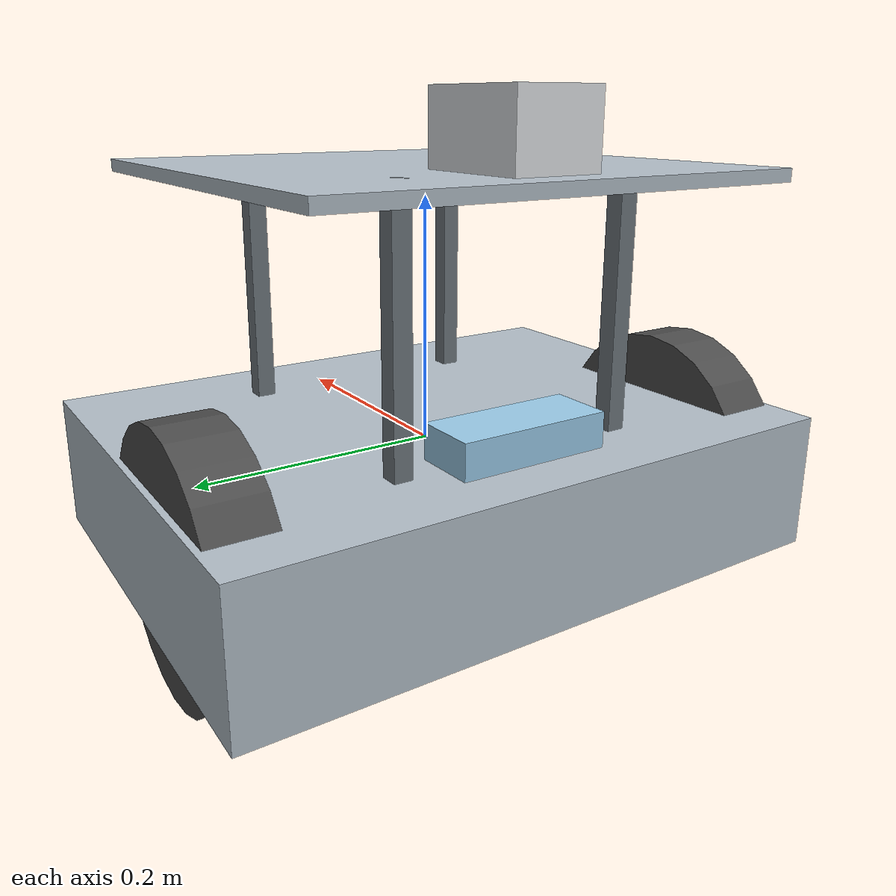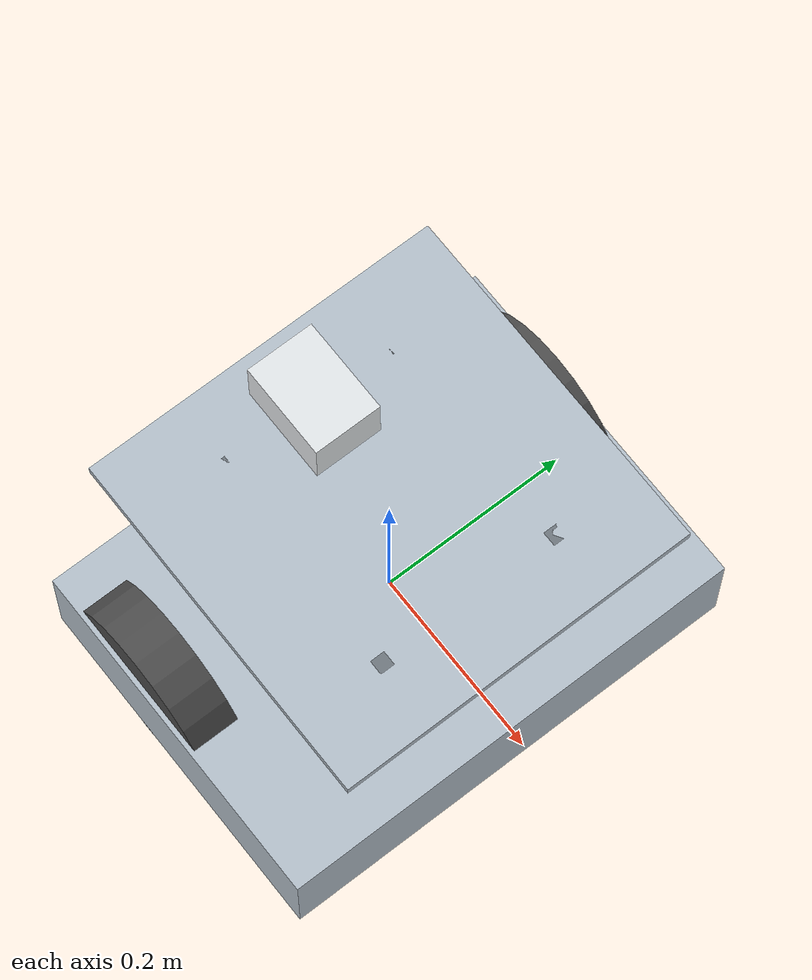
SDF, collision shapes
<?xml version="1.0" ?>
<sdf version="1.5">

  <model name="mobile_robot">

    <link name="root"/>

    <link name="base">

      <pose>-0.000225828 -0.000582711 -0.0756785 0 0 0</pose>

      <inertial>
        <pose>-0.000219092 -0.000000173224 0.0499034 0 0 0</pose>
        <mass>15.1111</mass>
        <inertia>
          <ixx>0.171627</ixx>
          <ixy>-1.29454e-07</ixy>
          <ixz>4.93826e-05</ixz>
          <iyy>0.164228</iyy>
          <iyz>5.77083e-09</iyz>
          <izz>0.312047</izz>
        </inertia>
      </inertial>

      <visual name="base_visual">
        <geometry>
          <mesh>
            <uri>model://mobile_robot/meshes/base.stl</uri>
            <scale>1 1 1</scale>
          </mesh>
        </geometry>
        <material>
          <diffuse>0.713726 0.760784 0.8 1</diffuse>
          <ambient>0.713726 0.760784 0.8 1</ambient>
        </material>
      </visual>

      <collision name="base_collision">
        <pose>0 0 0.045 0 0 0</pose>
        <geometry>
          <box>
            <size>0.374166 0.500716 0.110000</size>
          </box>
        </geometry>
      </collision>

    </link>

    <link name="bar">

      <pose>0.114681172 0.095835389 -0.0256785 0 0 0</pose>

      <inertial>
        <pose>0 0 0.125 0 0 0</pose>
        <mass>0.0525726</mass>realtive_to="rplidar"
        <inertia>
          <ixx>0.000274555</ixx>
          <ixy>0</ixy>
          <ixz>0</ixz>
          <iyy>0.000274555</iyy>
          <iyz>0</iyz>
          <izz>1.4786e-06</izz>
        </inertia>
      </inertial>

      <visual name="bar_visual">
        <pose>0 0 0 0 0 0</pose>
        <geometry>
          <mesh>
            <uri>model://mobile_robot/meshes/bar.stl</uri>
          </mesh>
        </geometry>
        <material>
          <diffuse>0.439216 0.47451 0.501961 1</diffuse>
          <ambient>0.439216 0.47451 0.501961 1</ambient>
        </material>
      </visual>

      <collision name="bar_collision">
        <pose>0 0 0.125 0 0 0</pose>
        <geometry>
          <box>
            <size>0.015 0.014978 0.25</size>
          </box>
        </geometry>
      </collision>

    </link>

    <link name="bar_1">

      <pose>0.114681172 -0.097000811 -0.0256785 0 0 0</pose>

      <inertial>
        <pose>0 0 0.125 0 0 0</pose>
        <mass>0.0525726</mass>
        <inertia>
          <ixx>0.000274555</ixx>
          <ixy>0</ixy>
          <ixz>0</ixz>
          <iyy>0.000274555</iyy>
          <iyz>0</iyz>
          <izz>1.4786e-06</izz>
        </inertia>
      </inertial>

      <visual name="bar_1_visual">
        <pose>0 0 0 0 0 0</pose>
        <geometry>
          <mesh>
            <uri>model://mobile_robot/meshes/bar.stl</uri>
          </mesh>
        </geometry>
        <material>
          <diffuse>0.439216 0.47451 0.501961 1</diffuse>
          <ambient>0.439216 0.47451 0.501961 1</ambient>
        </material>
      </visual>

      <collision name="bar_1_collision">
        <pose>0 0 0.125 0 0 0</pose>
        <geometry>
          <box>
            <size>0.015 0.014978 0.25</size>
          </box>
        </geometry>
      </collision>

    </link>

    <link name="bar_2">

      <pose>-0.115132828 0.095835389 -0.0256785 0 0 0</pose>

      <inertial>
        <pose>0 0 0.125 0 0 0</pose>
        <mass>0.0525726</mass>
        <inertia>
          <ixx>0.000274555</ixx>
          <ixy>0</ixy>
          <ixz>0</ixz>
          <iyy>0.000274555</iyy>
          <iyz>0</iyz>
          <izz>1.4786e-06</izz>
        </inertia>
      </inertial>

      <visual name="bar_2_visual">
        <pose>0 0 0 0 0 0</pose>
        <geometry>
          <mesh>
            <uri>model://mobile_robot/meshes/bar.stl</uri>
          </mesh>
        </geometry>
        <material>
          <diffuse>0.439216 0.47451 0.501961 1</diffuse>
          <ambient>0.439216 0.47451 0.501961 1</ambient>
        </material>
      </visual>

      <collision name="bar_2_collision">
        <pose>0 0 0.125 0 0 0</pose>
        <geometry>
          <box>
            <size>0.015 0.014978 0.25</size>
          </box>
        </geometry>
      </collision>

    </link>

    <link name="bar_3">

      <pose>-0.115132828 -0.097000811 -0.0256785 0 0 0</pose>

      <inertial>
        <pose>0 0 0.125 0 0 0</pose>
        <mass>0.0525726</mass>
        <inertia>
          <ixx>0.000274555</ixx>
          <ixy>0</ixy>
          <ixz>0</ixz>
          <iyy>0.000274555</iyy>
          <iyz>0</iyz>
          <izz>1.4786e-06</izz>
        </inertia>
      </inertial>

      <visual name="bar_3_visual">
        <pose>0 0 0 0 0 0</pose>
        <geometry>
          <mesh>
            <uri>model://mobile_robot/meshes/bar.stl</uri>
          </mesh>
        </geometry>
        <material>
          <diffuse>0.439216 0.47451 0.501961 1</diffuse>
          <ambient>0.439216 0.47451 0.501961 1</ambient>
        </material>
      </visual>

      <collision name="bar_3_collision">
        <pose>0 0 0.125 0 0 0</pose>
        <geometry>
          <box>
            <size>0.015 0.014978 0.25</size>
          </box>
        </geometry>
      </collision>

    </link>

    <link name="plate">

      <pose relative_to="bar_3">0 0 0.25 0 0 00</pose>

      <inertial>
        <pose>0.114907 0.0964181 -0.005 0 0 0</pose>
        <mass>1.56025</mass>
        <inertia>
          <ixx>0.0168214</ixx>
          <ixy>0</ixy>
          <ixz>0</ixz>
          <iyy>0.0163518</iyy>
          <iyz>0</iyz>
          <izz>0.0331472</izz>
        </inertia>
      </inertial>

      <visual name="plate_visual">
        <pose>0.114907 0.0964181 -0.01 0 0 0</pose>
        <geometry>
          <mesh>
            <uri>model://mobile_robot/meshes/plate.stl</uri>
          </mesh>
        </geometry>
        <material>
          <diffuse>0.713726 0.760784 0.8 1</diffuse>
          <ambient>0.713726 0.760784 0.8 1</ambient>
        </material>
      </visual>

      <collision name="plate_collision">
        <pose>0.114907 0.0964181 -0.005 0 0 0</pose>
        <geometry>
          <box>
            <size>0.374166 0.380716 0.010</size>
          </box>
        </geometry>
      </collision>

    </link>

    <link name="depth_camera">

      <pose relative_to="base">-0.12 0 0.1 0 0 -1.5708</pose>

      <inertial>
        <pose>-0.000224313 -0.00887366 0.0180682 0 0 0</pose>
        <mass>0.10278</mass>
        <inertia>
          <ixx>1.99451e-05</ixx>
          <ixy>-4.72461e-08</ixy>
          <ixz>9.49322e-08</ixz>
          <iyy>0.000125466</iyy>
          <iyz>2.64592e-06</iyz>
          <izz>0.000126152</izz>
        </inertia>
      </inertial>

      <visual name="depth_camera_visual">
        <pose>0.0000519288 -0.000172347 0.00608878 0 0 0</pose>
        <geometry>
          <mesh>
            <uri>model://mobile_robot/meshes/depth_camera.stl</uri>
          </mesh>
        </geometry>
        <material>
          <diffuse>0.615686 0.811765 0.929412 1</diffuse>
          <ambient>0.615686 0.811765 0.929412 1</ambient>
        </material>
      </visual>

      <collision name="depth_camera_collision">
        <pose>-0.000338 -0.000040 0.011011 0 0 0</pose>
        <geometry>
          <box>
            <size>0.124 0.050425 0.0342</size>
          </box>
        </geometry>
      </collision>

      <sensor name="depth_camera" type="rgbd_camera">

        <pose>-0.120226 0 0.0243214 0 0 -1.5708</pose>

        <always_on>true</always_on>
        <update_rate>30</update_rate>
        <topic>/camera</topic>

        <camera name="intel_realsense_d455">

          <horizontal_fov>1.50098</horizontal_fov>

          <lens>
            <intrinsics>
              <fx>343.159</fx>
              <fy>343.159</fy>
              <cx>319.5</cx>
              <cy>179.5</cy>
              <s>0</s>
            </intrinsics>
          </lens>

          <distortion>
            <k1>0</k1>
            <k2>0</k2>
            <k3>0</k3>
            <p1>0</p1>
            <p2>0</p2>
            <center>0.5 0.5</center>
          </distortion>

          <image>
            <width>640</width>
            <height>360</height>
            <format>R8G8B8</format>
          </image>

          <clip>
            <near>0.01</near>
            <far>300</far>
          </clip>

          <depth_camera>
            <clip>
              <near>0.1</near>
              <far>10</far>
            </clip>
            <output>depths</output>
          </depth_camera>

          <noise>
            <type>gaussian</type>
            <mean>0</mean>
            <stddev>0.007</stddev>
          </noise>

        </camera>
      </sensor>

    </link>

    <link name="rplidar">

      <pose relative_to="plate">-0.00509333 0.0964181 0.015 0 0 0</pose>

      <inertial>
        <pose>0.0100884 0.0000353251 0.0151831 0 0 0</pose>
        <mass>0.0997506</mass>
        <inertia>
          <ixx>4.28612e-05</ixx>
          <ixy>2.8632e-07</ixy>
          <ixz>1.36569e-05</ixz>
          <iyy>8.02911e-05</iyy>
          <iyz>-1.31345e-06</iyz>
          <izz>8.83408e-05</izz>
        </inertia>
      </inertial>

      <visual name="rplidar_visual">
        <pose>0.000083964 -0.000444572 0 0 0 0</pose>
        <geometry>
          <mesh>
            <uri>model://mobile_robot/meshes/rplidar.stl</uri>
          </mesh>
        </geometry>
        <material>
          <diffuse>0.898039 0.913725 0.925490 1</diffuse>
          <ambient>0.898039 0.913725 0.925490 1</ambient>
        </material>
      </visual>

      <collision name="rplidar_collision">
        <pose>0.013251 -0.000034 0.013300 0 0 0</pose>
        <geometry>
          <box>
            <size>0.099 0.070926 0.0566</size>
          </box>
        </geometry>
      </collision>

      <sensor name="rplidar" type="gpu_lidar">

        <pose>0 0 0 0 0 3.14159265359</pose>

        <visualize>true</visualize>
        <update_rate>10</update_rate>
        <always_on>true</always_on>

        <topic>/scan</topic>

        <ray>

          <scan>
            <horizontal>
              <samples>360</samples>
              <resolution>1.0</resolution>
              <min_angle>0</min_angle>
              <max_angle>6.284</max_angle>
            </horizontal>
          </scan>

          <range>
            <min>0.10</min>
            <max>3.5</max>
            <resolution>0.015</resolution>
          </range>

          <noise>
            <type>gaussian</type>
            <mean>0</mean>
            <stddev>0.01</stddev>
          </noise>

        </ray>

      </sensor>

    </link>

    <link name="wheel_left">

      <pose relative_to="base">-0.06 -0.220358 0.05 1.5708 0 -1.5708</pose>

      <inertial>
        <pose>0.0037479 0 0 0 0 0</pose>
        <mass>0.922424</mass>
        <inertia>
          <ixx>0.00462916</ixx>
          <ixy>0</ixy>
          <ixz>0</ixz>
          <iyy>0.00240533</iyy>
          <iyz>0</iyz>
          <izz>0.00240533</izz>
        </inertia>
      </inertial>

      <visual name="wheel_left_visual">
        <geometry>
          <mesh>
            <uri>model://mobile_robot/meshes/wheel.stl</uri>
          </mesh>
        </geometry>
        <material>
          <diffuse>0.301961 0.301961 0.301961 1</diffuse>
          <ambient>0.301961 0.301961 0.301961 1</ambient>
        </material>
      </visual>

      <collision name="wheel_left_collision">
        <pose>0 0 0 0 1.57079632679 0</pose>
        <geometry>
          <cylinder>
            <radius>0.099117</radius>
            <length>0.05</length>
          </cylinder>
        </geometry>
        <surface>
          <friction>
            <ode>
              <mu>2.0</mu>
              <mu2>2.0</mu2>
            </ode>
          </friction>
          <contact>
            <ode>
              <kp>1000000.0</kp>
              <kd>100.0</kd>
              <min_depth>0.001</min_depth>
              <max_vel>0.1</max_vel>
            </ode>
          </contact>
        </surface>
      </collision>

    </link>

    <link name="wheel_right">

      <pose relative_to="base">-0.06 0.220358 0.05 -1.5708 0 1.5708</pose>

      <inertial>
        <pose>0.0037479 0 0 0 0 0</pose>
        <mass>0.922424</mass>
        <inertia>
          <ixx>0.00462916</ixx>
          <ixy>0</ixy>
          <ixz>0</ixz>
          <iyy>0.00240533</iyy>
          <iyz>0</iyz>
          <izz>0.00240533</izz>
        </inertia>
      </inertial>

      <visual name="wheel_right_visual">
        <geometry>
          <mesh>
            <uri>model://mobile_robot/meshes/wheel.stl</uri>
          </mesh>
        </geometry>
        <material>
          <diffuse>0.301961 0.301961 0.301961 1</diffuse>
          <ambient>0.301961 0.301961 0.301961 1</ambient>
        </material>
      </visual>

      <collision name="wheel_right_collision">
        <pose>0 0 0 0 1.57079632679 0</pose>
        <geometry>
          <cylinder>
            <radius>0.099117</radius>
            <length>0.05</length>
          </cylinder>
        </geometry>
        <surface>
          <friction>
            <ode>
              <mu>2.0</mu>
              <mu2>2.0</mu2>
            </ode>
          </friction>
          <contact>
            <ode>
              <kp>1000000.0</kp>
              <kd>100.0</kd>
              <min_depth>0.001</min_depth>
              <max_vel>0.1</max_vel>
            </ode>
          </contact>
        </surface>
      </collision>

    </link>

    <link name="caster_socket">

      <pose relative_to="base">0.12 0 -0.01 0 0 0</pose>

      <inertial>
        <pose>0 0 -0.0137698 0 0 0</pose>
        <mass>0.0119725</mass>
        <inertia>
          <ixx>2.20545e-06</ixx>
          <ixy>0</ixy>
          <ixz>0</ixz>
          <iyy>1.71246e-06</iyy>
          <iyz>1.15412e-11</iyz>
          <izz>1.92329e-06</izz>
        </inertia>
      </inertial>

      <visual name="caster_socket_visual">
        <pose>0 0 -0.022 0 0 0</pose>
        <geometry>
          <mesh>
            <uri>model://mobile_robot/meshes/caster_socket.stl</uri>
          </mesh>
        </geometry>
        <material>
          <diffuse>0.713726 0.760784 0.8 1</diffuse>
          <ambient>0.713726 0.760784 0.8 1</ambient>
        </material>
      </visual>

      <collision name="caster_socket_collision">
        <pose>0 0 0.007 0 0 0</pose>
        <geometry>
          <box>
            <size>0.026473 0.026474 0.03</size>
          </box>
        </geometry>
      </collision>

    </link>

    <link name="caster_wheel">

      <pose relative_to="caster_socket">0 0.0000005 -0.022 0 0 0</pose>

      <inertial>
        <pose>0 0 0 0 0 0</pose>
        <mass>0.0130779</mass>
        <inertia>
          <ixx>1.09879e-06</ixx>
          <ixy>0</ixy>
          <ixz>0</ixz>
          <iyy>1.81484e-06</iyy>
          <iyz>0</iyz>
          <izz>1.09879e-06</izz>
        </inertia>
      </inertial>

      <visual name="caster_wheel_visual">
        <pose>0 0 0 0 0 0</pose>
        <geometry>
          <mesh>
            <uri>model://mobile_robot/meshes/caster_wheel.stl</uri>
          </mesh>
        </geometry>
        <material>
          <diffuse>0.301961 0.301961 0.301961 1</diffuse>
          <ambient>0.301961 0.301961 0.301961 1</ambient>
        </material>
      </visual>

      <collision name="caster_wheel_collision">
        <pose>0 0 0 -1.57079632679 0 0</pose>
        <geometry>
          <cylinder>
            <radius>0.017991</radius>
            <length>0.032</length>
          </cylinder>
        </geometry>
        <surface>
          <friction>
            <ode>
              <mu>0.3</mu>
              <mu2>0.3</mu2>
            </ode>
          </friction>
        </surface>
      </collision>

    </link>

    <joint name="hanging_node_to_root_joint" type="fixed">
      <parent>root</parent>
      <child>base</child>
      <pose>-0.000225828 -0.000582711 -0.0756785 0 0 0</pose>
    </joint>

    <joint name="depth_camera_to_base" type="fixed">
      <parent>base</parent>
      <child>depth_camera</child>
      <pose>-0.12 0 0.1 0 0 -1.5708</pose>
    </joint>

    <joint name="bar_to_base1" type="fixed">
      <parent>base</parent>
      <child>bar_1</child>
      <pose>0.114907 -0.0964181 0.05 0 0 0</pose>
    </joint>

    <joint name="bar_to_base2" type="fixed">
      <parent>base</parent>
      <child>bar_3</child>
      <pose>-0.114907 -0.0964181 0.05 0 0 0</pose>
    </joint>

    <joint name="bar_to_base3" type="fixed">
      <parent>base</parent>
      <child>bar</child>
      <pose>0.114907 0.0964181 0.05 0 0 0</pose>
    </joint>

    <joint name="bar_to_base4" type="fixed">
      <parent>base</parent>
      <child>bar_2</child>
      <pose>-0.114907 0.0964181 0.05 0 0 0</pose>
    </joint>

    <joint name="plate_to_bar" type="fixed">
      <parent>bar_3</parent>
      <child>plate</child>
      <pose>0 0 0.25 0 0 0</pose>
    </joint>

    <joint name="rplidar_to_plate" type="fixed">
      <parent>plate</parent>
      <child>rplidar</child>
      <pose>-0.00509333 0.0964181 0.015 0 0 0</pose>
    </joint>

    <joint name="wheel_left_to_base" type="revolute">

      <parent>base</parent>
      <child>wheel_left</child>

      <pose relative_to="base">-0.06 -0.220358 0.05 1.5708 0 -1.5708</pose>

      <axis>
        <xyz>1 0 0</xyz>
        <dynamics>
          <damping>0.5</damping>
          <friction>0.05</friction>
        </dynamics>
      </axis>

    </joint>

    <joint name="wheel_right_to_base" type="revolute">

      <parent>base</parent>
      <child>wheel_right</child>

      <pose relative_to="base">-0.06 0.220358 0.05 -1.5708 0 1.5708</pose>

      <axis>
        <xyz>-1 0 0</xyz>
        <dynamics>
          <damping>0.5</damping>
          <friction>0.05</friction>
        </dynamics>
      </axis>

    </joint>

    <joint name="caster_socket_to_base" type="revolute">

      <parent>base</parent>
      <child>caster_socket</child>

      <pose relative_to="base">0.12 0 -0.01 0 0 0</pose>

      <axis>
        <xyz>0 0 1</xyz>
        <dynamics>
          <damping>0.5</damping>
          <friction>0.05</friction>
        </dynamics>
      </axis>

    </joint>

    <joint name="caster_wheel_to_socket" type="revolute">

      <parent>caster_socket</parent>
      <child>caster_wheel</child>

      <pose relative_to="base">0 0.0000005 -0.022 0 0 0</pose>

      <axis>
        <xyz>0 1 0</xyz>
        <dynamics>
          <damping>0.5</damping>
          <friction>0.05</friction>
        </dynamics>
      </axis>

    </joint>

    <plugin
      filename="gz-sim-diff-drive-system"
      name="gz::sim::systems::DiffDrive">

      <left_joint>wheel_left_to_base</left_joint>
      <right_joint>wheel_right_to_base</right_joint>

      <wheel_separation>0.440716</wheel_separation>
      <wheel_radius>0.099117</wheel_radius>

      <topic>/cmd_vel</topic>

      <odom_topic>/odom</odom_topic>

      <frame_id>odom</frame_id>
      <child_frame_id>root</child_frame_id>

      <odom_publish_frequency>30</odom_publish_frequency>

      <tf_topic>/tf</tf_topic>

    </plugin>

    <plugin
      filename="gz-sim-joint-state-publisher-system"
      name="gz::sim::systems::JointStatePublisher">

      <topic>/joint_states</topic>

      <joint_name>wheel_left_to_base</joint_name>
      <joint_name>wheel_right_to_base</joint_name>
      <joint_name>caster_socket_to_base</joint_name>
      <joint_name>caster_wheel_to_socket</joint_name>

    </plugin>

  </model>

</sdf>
